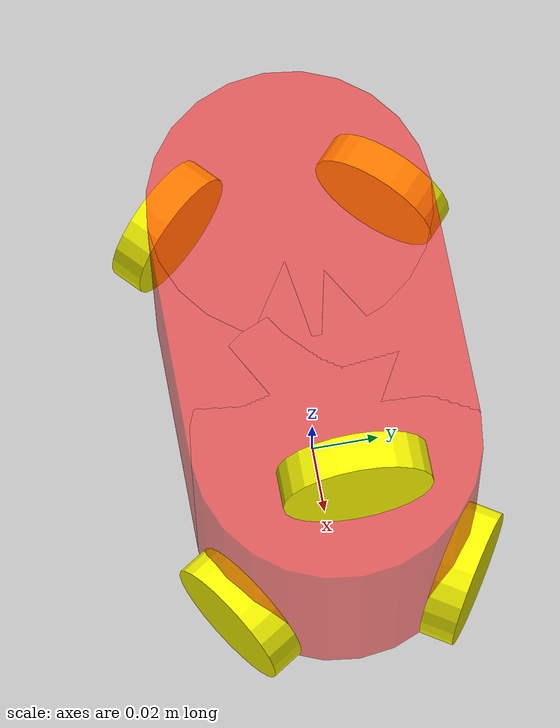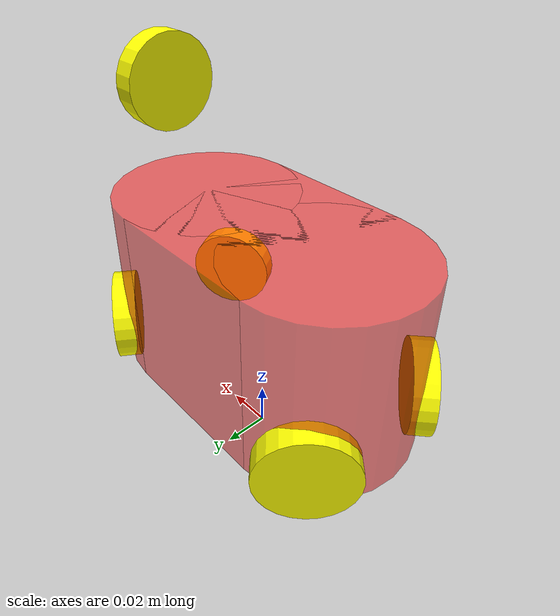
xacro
<?xml version="1.0"?>

<!-- created by Michael Kopp, 2017-05-22, MIT licensed -->

<robot name="elegooSonars"
    xmlns:sensor="http://playerstage.sourceforge.net/gazebo/xmlschema/#sensor"
    xmlns:controller="http://playerstage.sourceforge.net/gazebo/xmlschema/#controller"
    xmlns:interface="http://playerstage.sourceforge.net/gazebo/xmlschema/#interface"
    xmlns:xacro="http://ros.org/wiki/xacro">

    <xacro:property name="base_above_ground"    value="0.03" /> <!-- distance between ground and the lower plane of the robot in m -->
    <xacro:property name="height_chassis"       value="0.08" /> <!-- height of chassis (i.e. distance between lower and upper plane) in m -->
    <xacro:property name="width_chassis"        value="0.08" /> <!-- width of chassis in m -->
    <xacro:property name="length_chassis"       value="0.15" /> <!-- length of chassis in m -->

    <!-- chassis; base_link is the point on the ground, directly below the center of the robot

         This assumes, that the robot has two semi-circles to both ends.
    -->
    <link name="base_link">
        <visual>
            <origin xyz="${(length_chassis - width_chassis)/2} 0 ${base_above_ground + 0.5 * height_chassis}" />
            <geometry>
                <cylinder length="${height_chassis}" radius="${0.5 * width_chassis}" />
            </geometry>
            <material name="robot_color"> <color rgba="1 0 0 0.5" /> </material>
        </visual>
        <visual>
            <origin xyz="${-(length_chassis - width_chassis)/2} 0 ${base_above_ground + 0.5 * height_chassis}" />
            <geometry>
                <cylinder length="${height_chassis}" radius="${0.5 * width_chassis}" />
            </geometry>
            <material name="robot_color" />
        </visual>
        <visual>
            <origin xyz="0 0 ${base_above_ground + 0.5 * height_chassis}" />
            <geometry>
                <box size="${length_chassis - width_chassis} ${width_chassis} ${height_chassis}" />
            </geometry>
            <material name="robot_color" />
        </visual>
    </link>

    <!-- simple description of a single sonar -->
    <xacro:macro name="sonar_link" params="name">
        <link name="${name}">
            <visual>
                <!-- flat cylinder; flat side is in x direction, rotate in joint
                 appropriately -->
                <origin xyz="0 0 0" rpy="0 1.5707963267948966 0" />
                <geometry>
                    <cylinder length="0.01" radius="0.02" />
                </geometry>
                <material name="yellow">
                    <color rgba="1 1 0 1" />
                </material>
            </visual>
        </link>
    </xacro:macro>

    <!-- fixed sonars -->
    <xacro:macro name="fixed_sonar" params="id x y theta">
        <xacro:sonar_link name="sonar_${id}" />
        <joint name="sonar_${id}_to_base_link" type="fixed">
            <parent link="base_link" />
            <child link="sonar_${id}" />
            <origin xyz="${x} ${y} ${base_above_ground + 0.2 * height_chassis}" rpy="0 0 ${theta}" />
        </joint>
    </xacro:macro>

    <!-- FIXME: These values are just approximate and need to be set correctly
         by measuring position/angle precisely.
    -->
    <xacro:fixed_sonar id="f0" x="${length_chassis * 0.4}"  y="${width_chassis * 0.4}"  theta="1" />
    <xacro:fixed_sonar id="f1" x="${length_chassis * 0.4}"  y="-${width_chassis * 0.4}" theta="-1" />
    <xacro:fixed_sonar id="f2" x="-${length_chassis * 0.4}" y="${width_chassis * 0.4}"  theta="2.4" />
    <xacro:fixed_sonar id="f3" x="-${length_chassis * 0.4}" y="-${width_chassis * 0.4}" theta="-2.4" />

    <!-- rotating sonar -->

    <xacro:sonar_link name="sonar_r0" />

    <!-- FIXME: correct values for
         - position (x, y, z (especially height above top plate))
         - angle limits [rad]
         - velocity [rad/s]; see http://wiki.ros.org/urdf/XML/joint -->
    <joint name="sonar_r0_to_base_link" type="revolute">
        <axis xyz="0 0 1" />
        <limit effort="1000.0" lower="-1.9" upper="1.9" velocity="0.5" />
        <origin rpy="0 0 0" xyz="${length_chassis * 0.4} 0 ${height_chassis + base_above_ground + 0.04}" />
        <parent link="base_link" />
        <child link="sonar_r0" />
    </joint>

</robot>
